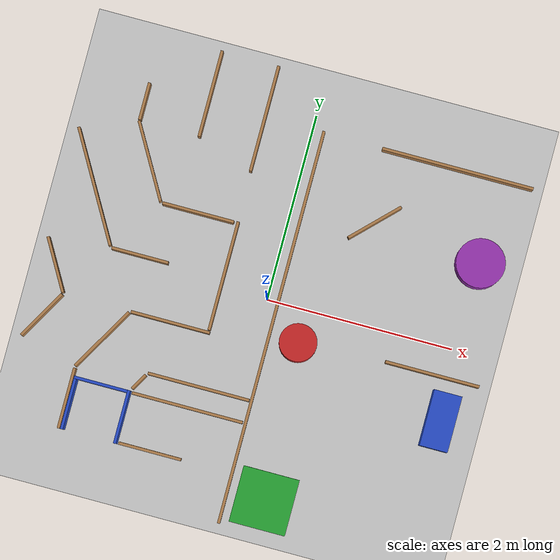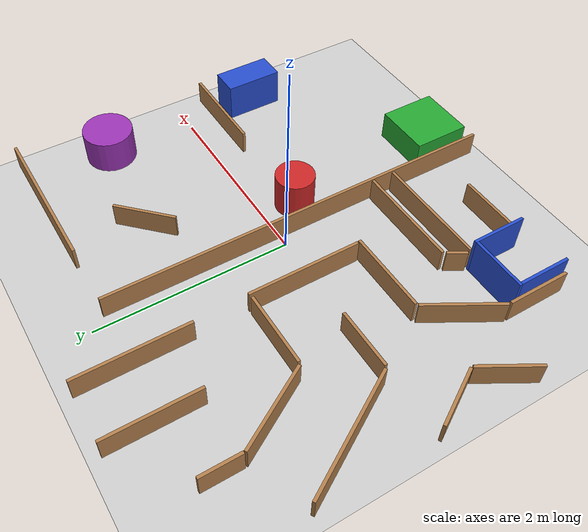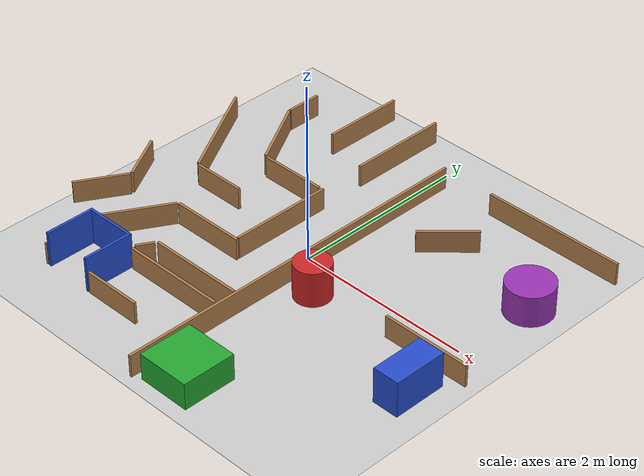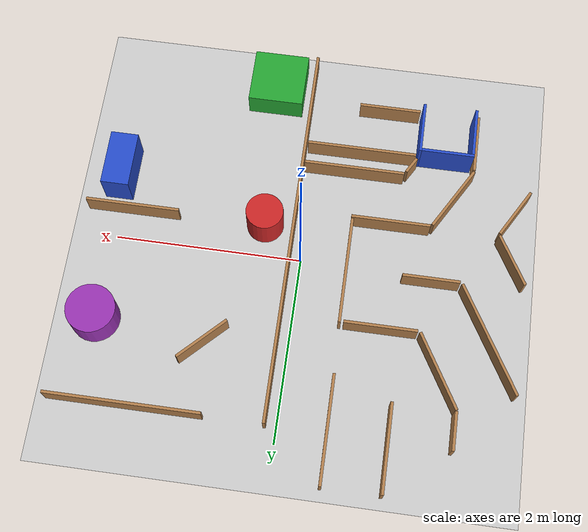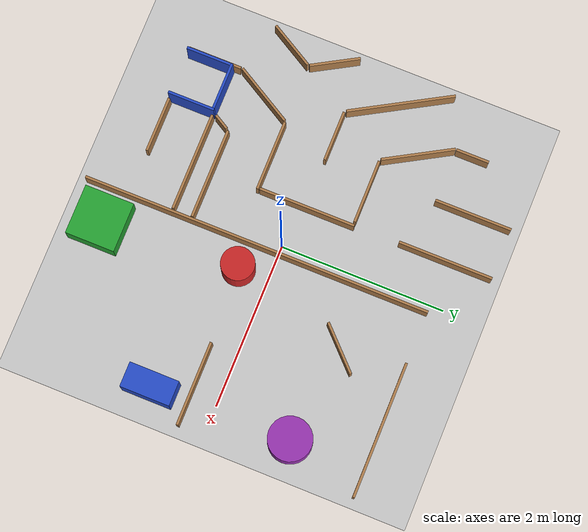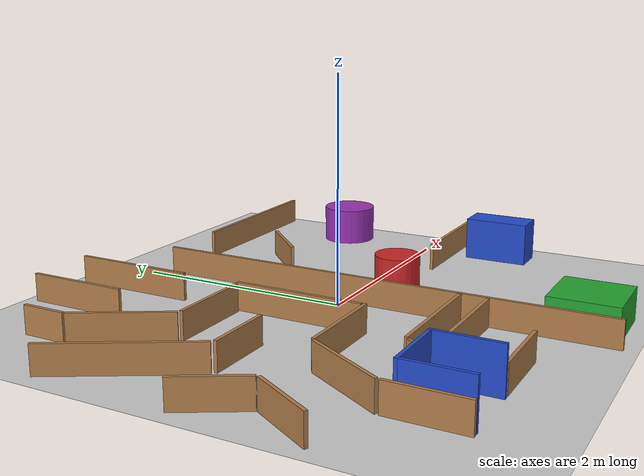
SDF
<sdf version="1.6">
 <world name="default">
  <light name="sun" type="directional">
   <pose>0 0 10 0 -0 0</pose>
   <diffuse>0.8 0.8 0.8 1</diffuse>
   <specular>0.2 0.2 0.2 1</specular>
   <attenuation>
    <range>1000</range>
    <constant>0.9</constant>
    <linear>0.01</linear>
    <quadratic>0.001</quadratic>
   </attenuation>
   <direction>-0.5 0.1 -0.9</direction>
  </light>
  <gravity>0 0 -9.8</gravity>
  <magnetic_field>6e-06 2.3e-05 -4.2e-05</magnetic_field>
  <atmosphere type="adiabatic"/>
  <physics name="default_physics" default="0" type="ode">
   <max_step_size>0.001</max_step_size>
   <real_time_factor>1</real_time_factor>
   <real_time_update_rate>1000</real_time_update_rate>
  </physics>
  <scene><ambient>0.4 0.4 0.4 1</ambient><background>0.7 0.7 0.7 1</background><shadows>1</shadows></scene>
  <spherical_coordinates>
   <surface_model>EARTH_WGS84</surface_model>
   <latitude_deg>0</latitude_deg>
   <longitude_deg>0</longitude_deg>
   <elevation>0</elevation>
   <heading_deg>0</heading_deg>
  </spherical_coordinates>
  <include><uri>model://final_challenge_example</uri></include>
 </world>
</sdf>

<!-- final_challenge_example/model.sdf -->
<sdf version="1.4">
<model name="beaconing">
  <static>true</static>
    <link name="floor">
      <collision name="collision">
        <geometry>
          <plane>
            <normal>0 0 1</normal>
            <size>5.0 5.0</size>
          </plane>
        </geometry>
        <surface>
          <friction>
            <ode>
              <mu>100</mu>
              <mu2>50</mu2>
            </ode>
          </friction>
        </surface>
      </collision>
      <visual name="visual">
        <cast_shadows>false</cast_shadows>
        <geometry>
          <plane>
            <normal>0 0 1</normal>
            <size>5.0 5.0</size>
          </plane>
        </geometry>
        <material>
          <script>
            <uri>model://final_challenge_example/materials/scripts</uri>
            <uri>model://final_challenge_example/materials/textures</uri>
            <name>FinalChallengeExampleFloor/Image</name>
          </script>
        </material>
      </visual>
    </link>
    <link name='start_zone'>
      <pose frame=''>-1.41861 -1.58157 0.2 0 0 -1.571</pose>
      <collision name='Right_Wall_Collision'>
        <geometry>
          <box>
            <size>0.57 0.03 0.4</size>
          </box>
        </geometry>
        <pose frame=''>0 0.2850 0 0 0 0</pose>
      </collision>
      <visual name='Right_Wall_Visual'>
        <pose frame=''>0 0.2850 0 0 0 0</pose>
        <geometry>
          <box>
            <size>0.57 0.03 0.4</size>
          </box>
        </geometry>
        <material>
          <script>
            <uri>file://media/materials/scripts/gazebo.material</uri>
            <name>Gazebo/Blue</name>
          </script>
        </material>
      </visual>
      <collision name='Back_Wall_Collision'>
        <geometry>
          <box>
            <size>0.57 0.03 0.4</size>
          </box>
        </geometry>
        <pose frame=''>-0.27 -0.015 0 0 0 1.571</pose>
      </collision>
      <visual name='Back_Wall_Visual'>
        <pose frame=''>-0.27 -0.015 0 0 0 1.571</pose>
        <geometry>
          <box>
            <size>0.57 0.03 0.4</size>
          </box>
        </geometry>
        <material>
          <script>
            <uri>file://media/materials/scripts/gazebo.material</uri>
            <name>Gazebo/Blue</name>
          </script>
        </material>
      </visual>
      <collision name='Left_Wall_Collision'>
        <geometry>
          <box>
            <size>0.54 0.03 0.4</size>
          </box>
        </geometry>
        <pose frame=''>0.015 -0.285 0 0 0 0</pose>
      </collision>
      <visual name='Left_Wall_Visual'>
        <pose frame=''>0.015 -0.285 0 0 0 0</pose>
        <geometry>
          <box>
            <size>0.54 0.03 0.4</size>
          </box>
        </geometry>
        <material>
          <script>
            <uri>file://media/materials/scripts/gazebo.material</uri>
            <name>Gazebo/Blue</name>
          </script>
        </material>
      </visual>
    </link>
    <link name='wall_00'>
      <pose frame=''>-0.76361 -1.85157 0.125 0 0 0</pose>
      <collision name='coll'>
        <geometry>
          <box>
            <size>0.67 0.03 0.25</size>
          </box>
        </geometry>
      </collision>
      <visual name='vis'>
        <geometry>
          <box>
            <size>0.67 0.03 0.25</size>
          </box>
        </geometry>
        <material>
          <script>
            <uri>file://media/materials/scripts/gazebo.material</uri>
            <name>Gazebo/Wood</name>
          </script>
        </material>
      </visual>
    </link>
    <link name='wall_01'>
      <pose frame=''>-1.74664 -1.54157 0.125 0 0 1.571</pose>
      <collision name='coll'>
        <geometry>
          <box>
            <size>0.65 0.03 0.25</size>
          </box>
        </geometry>
      </collision>
      <visual name='vis'>
        <geometry>
          <box>
            <size>0.65 0.03 0.25</size>
          </box>
        </geometry>
        <material>
          <script>
            <uri>file://media/materials/scripts/gazebo.material</uri>
            <name>Gazebo/Wood</name>
          </script>
        </material>
      </visual>
    </link>
    <link name='wall_02'>
      <pose frame=''>-0.50602 -1.31157 0.125 0 0 0</pose>
      <collision name='coll'>
        <geometry>
          <box>
            <size>1.19 0.03 0.25</size>
          </box>
        </geometry>
      </collision>
      <visual name='vis'>
        <geometry>
          <box>
            <size>1.19 0.03 0.25</size>
          </box>
        </geometry>
        <material>
          <script>
            <uri>file://media/materials/scripts/gazebo.material</uri>
            <name>Gazebo/Wood</name>
          </script>
        </material>
      </visual>
    </link>
    <link name='wall_03'>
      <pose frame=''>-1.06401 -1.18247 0.125 0 0 1.048</pose>
      <collision name='coll'>
        <geometry>
          <box>
            <size>0.20 0.03 0.25</size>
          </box>
        </geometry>
      </collision>
      <visual name='vis'>
        <geometry>
          <box>
            <size>0.20 0.03 0.25</size>
          </box>
        </geometry>
        <material>
          <script>
            <uri>file://media/materials/scripts/gazebo.material</uri>
            <name>Gazebo/Wood</name>
          </script>
        </material>
      </visual>
    </link>
    <link name='wall_04'>
      <pose frame=''>-0.44998 -1.07157 0.125 0 0 0</pose>
      <collision name='coll'>
        <geometry>
          <box>
            <size>1.09 0.03 0.25</size>
          </box>
        </geometry>
      </collision>
      <visual name='vis'>
        <geometry>
          <box>
            <size>1.09 0.03 0.25</size>
          </box>
        </geometry>
        <material>
          <script>
            <uri>file://media/materials/scripts/gazebo.material</uri>
            <name>Gazebo/Wood</name>
          </script>
        </material>
      </visual>
    </link>
    <link name='wall_05'>
      <pose frame=''>-1.55115 -0.85274 0.125 0 0 1.048</pose>
      <collision name='coll'>
        <geometry>
          <box>
            <size>0.79 0.03 0.25</size>
          </box>
        </geometry>
      </collision>
      <visual name='vis'>
        <geometry>
          <box>
            <size>0.79 0.03 0.25</size>
          </box>
        </geometry>
        <material>
          <script>
            <uri>file://media/materials/scripts/gazebo.material</uri>
            <name>Gazebo/Wood</name>
          </script>
        </material>
      </visual>
    </link>
    <link name='wall_06'>
      <pose frame=''>-0.90955 -0.49871 0.125 0 0 0</pose>
      <collision name='coll'>
        <geometry>
          <box>
            <size>0.85 0.03 0.25</size>
          </box>
        </geometry>
      </collision>
      <visual name='vis'>
        <geometry>
          <box>
            <size>0.85 0.03 0.25</size>
          </box>
        </geometry>
        <material>
          <script>
            <uri>file://media/materials/scripts/gazebo.material</uri>
            <name>Gazebo/Wood</name>
          </script>
        </material>
      </visual>
    </link>
    <link name='wall_07'>
      <pose frame=''>-0.49955 0.11268 0.125 0 0 1.571</pose>
      <collision name='coll'>
        <geometry>
          <box>
            <size>1.17 0.03 0.25</size>
          </box>
        </geometry>
      </collision>
      <visual name='vis'>
        <geometry>
          <box>
            <size>1.17 0.03 0.25</size>
          </box>
        </geometry>
        <material>
          <script>
            <uri>file://media/materials/scripts/gazebo.material</uri>
            <name>Gazebo/Wood</name>
          </script>
        </material>
      </visual>
    </link>
    <link name='wall_08'>
      <pose frame=''>-2.22369 -0.76938 0.125 0 0 1.048</pose>
      <collision name='coll'>
        <geometry>
          <box>
            <size>0.60 0.03 0.25</size>
          </box>
        </geometry>
      </collision>
      <visual name='vis'>
        <geometry>
          <box>
            <size>0.60 0.03 0.25</size>
          </box>
        </geometry>
        <material>
          <script>
            <uri>file://media/materials/scripts/gazebo.material</uri>
            <name>Gazebo/Wood</name>
          </script>
        </material>
      </visual>
    </link>
    <link name='wall_09'>
      <pose frame=''>-2.22368 -0.22821 0.125 0 0 -1.048</pose>
      <collision name='coll'>
        <geometry>
          <box>
            <size>0.60 0.03 0.25</size>
          </box>
        </geometry>
      </collision>
      <visual name='vis'>
        <geometry>
          <box>
            <size>0.60 0.03 0.25</size>
          </box>
        </geometry>
        <material>
          <script>
            <uri>file://media/materials/scripts/gazebo.material</uri>
            <name>Gazebo/Wood</name>
          </script>
        </material>
      </visual>
    </link>
    <link name='wall_0A'>
      <pose frame=''>-1.39752 0.09333 0.125 0 0 0</pose>
      <collision name='coll'>
        <geometry>
          <box>
            <size>0.61 0.03 0.25</size>
          </box>
        </geometry>
      </collision>
      <visual name='vis'>
        <geometry>
          <box>
            <size>0.61 0.03 0.25</size>
          </box>
        </geometry>
        <material>
          <script>
            <uri>file://media/materials/scripts/gazebo.material</uri>
            <name>Gazebo/Wood</name>
          </script>
        </material>
      </visual>
    </link>
    <link name='wall_0B'>
      <pose frame=''>-2.04570 0.66665 0.125 0 0 -1.048</pose>
      <collision name='coll'>
        <geometry>
          <box>
            <size>1.28 0.03 0.25</size>
          </box>
        </geometry>
      </collision>
      <visual name='vis'>
        <geometry>
          <box>
            <size>1.28 0.03 0.25</size>
          </box>
        </geometry>
        <material>
          <script>
            <uri>file://media/materials/scripts/gazebo.material</uri>
            <name>Gazebo/Wood</name>
          </script>
        </material>
      </visual>
    </link>
    <link name='wall_0C'>
      <pose frame=''>-0.92752 0.68268 0.125 0 0 0</pose>
      <collision name='coll'>
        <geometry>
          <box>
            <size>0.77 0.03 0.25</size>
          </box>
        </geometry>
      </collision>
      <visual name='vis'>
        <geometry>
          <box>
            <size>0.77 0.03 0.25</size>
          </box>
        </geometry>
        <material>
          <script>
            <uri>file://media/materials/scripts/gazebo.material</uri>
            <name>Gazebo/Wood</name>
          </script>
        </material>
      </visual>
    </link>
    <link name='wall_0D'>
      <pose frame=''>-1.55693 1.07098 0.125 0 0 -1.048</pose>
      <collision name='coll'>
        <geometry>
          <box>
            <size>0.87 0.03 0.25</size>
          </box>
        </geometry>
      </collision>
      <visual name='vis'>
        <geometry>
          <box>
            <size>0.87 0.03 0.25</size>
          </box>
        </geometry>
        <material>
          <script>
            <uri>file://media/materials/scripts/gazebo.material</uri>
            <name>Gazebo/Wood</name>
          </script>
        </material>
      </visual>
    </link>
    <link name='wall_0E'>
      <pose frame=''>-1.77242 1.66053 0.125 0 0 1.571</pose>
      <collision name='coll'>
        <geometry>
          <box>
            <size>0.40 0.03 0.25</size>
          </box>
        </geometry>
      </collision>
      <visual name='vis'>
        <geometry>
          <box>
            <size>0.40 0.03 0.25</size>
          </box>
        </geometry>
        <material>
          <script>
            <uri>file://media/materials/scripts/gazebo.material</uri>
            <name>Gazebo/Wood</name>
          </script>
        </material>
      </visual>
    </link>
    <link name='wall_0F'>
      <pose frame=''>-1.12669 1.91633 0.125 0 0 1.571</pose>
      <collision name='coll'>
        <geometry>
          <box>
            <size>0.93 0.03 0.25</size>
          </box>
        </geometry>
      </collision>
      <visual name='vis'>
        <geometry>
          <box>
            <size>0.93 0.03 0.25</size>
          </box>
        </geometry>
        <material>
          <script>
            <uri>file://media/materials/scripts/gazebo.material</uri>
            <name>Gazebo/Wood</name>
          </script>
        </material>
      </visual>
    </link>
    <link name='wall_10'>
      <pose frame=''>-0.51535 1.81133 0.125 0 0 1.571</pose>
      <collision name='coll'>
        <geometry>
          <box>
            <size>1.14 0.03 0.25</size>
          </box>
        </geometry>
      </collision>
      <visual name='vis'>
        <geometry>
          <box>
            <size>1.14 0.03 0.25</size>
          </box>
        </geometry>
        <material>
          <script>
            <uri>file://media/materials/scripts/gazebo.material</uri>
            <name>Gazebo/Wood</name>
          </script>
        </material>
      </visual>
    </link>
    <link name='wall_11'>
      <pose frame=''>0.11942 -0.27157 0.125 0 0 1.571</pose>
      <collision name='coll'>
        <geometry>
          <box>
            <size>4.23 0.03 0.25</size>
          </box>
        </geometry>
      </collision>
      <visual name='vis'>
        <geometry>
          <box>
            <size>4.23 0.03 0.25</size>
          </box>
        </geometry>
        <material>
          <script>
            <uri>file://media/materials/scripts/gazebo.material</uri>
            <name>Gazebo/Wood</name>
          </script>
        </material>
      </visual>
    </link>
    <link name='wall_12'>
      <pose frame=''>1.56865 1.82843 0.125 0 0 0</pose>
      <collision name='coll'>
        <geometry>
          <box>
            <size>1.63 0.03 0.25</size>
          </box>
        </geometry>
      </collision>
      <visual name='vis'>
        <geometry>
          <box>
            <size>1.63 0.03 0.25</size>
          </box>
        </geometry>
        <material>
          <script>
            <uri>file://media/materials/scripts/gazebo.material</uri>
            <name>Gazebo/Wood</name>
          </script>
        </material>
      </visual>
    </link>
    <link name='wall_13'>
      <pose frame=''>0.87757 1.06095 0.125 0 0 0.786</pose>
      <collision name='coll'>
        <geometry>
          <box>
            <size>0.64 0.03 0.25</size>
          </box>
        </geometry>
      </collision>
      <visual name='vis'>
        <geometry>
          <box>
            <size>0.64 0.03 0.25</size>
          </box>
        </geometry>
        <material>
          <script>
            <uri>file://media/materials/scripts/gazebo.material</uri>
            <name>Gazebo/Wood</name>
          </script>
        </material>
      </visual>
    </link>
    <link name='wall_14'>
      <pose frame=''>1.86622 -0.31301 0.125 0 0 0</pose>
      <collision name='coll'>
        <geometry>
          <box>
            <size>1.01 0.03 0.25</size>
          </box>
        </geometry>
      </collision>
      <visual name='vis'>
        <geometry>
          <box>
            <size>1.01 0.03 0.25</size>
          </box>
        </geometry>
        <material>
          <script>
            <uri>file://media/materials/scripts/gazebo.material</uri>
            <name>Gazebo/Wood</name>
          </script>
        </material>
      </visual>
    </link>
    <link name='cyl_a'>
      <pose frame=''>0.43133 -0.36288 0.2 0 0 0</pose>
      <collision name='coll'>
        <geometry>
          <cylinder>
            <radius>0.2</radius>
            <length>0.4</length>
          </cylinder>
        </geometry>
        <max_contacts>10</max_contacts>
        <surface>
          <bounce/>
          <friction>
            <ode/>
          </friction>
          <contact>
            <ode/>
          </contact>
        </surface>
      </collision>
      <visual name='vis'>
        <geometry>
          <cylinder>
            <radius>0.2</radius>
            <length>0.4</length>
          </cylinder>
        </geometry>
        <material>
          <script>
            <uri>file://media/materials/scripts/gazebo.material</uri>
            <name>Gazebo/Red</name>
          </script>
        </material>
      </visual>
    </link>
    <link name='cyl_b'>
      <pose frame=''>2.04977 0.92898 0.175 0 0 0</pose>
      <collision name='coll'>
        <geometry>
          <cylinder>
            <radius>0.26</radius>
            <length>0.35</length>
          </cylinder>
        </geometry>
        <max_contacts>10</max_contacts>
        <surface>
          <bounce/>
          <friction>
            <ode/>
          </friction>
          <contact>
            <ode/>
          </contact>
        </surface>
      </collision>
      <visual name='vis'>
        <geometry>
          <cylinder>
            <radius>0.26</radius>
            <length>0.35</length>
          </cylinder>
        </geometry>
        <material>
          <script>
            <uri>file://media/materials/scripts/gazebo.material</uri>
            <name>Gazebo/Purple</name>
          </script>
        </material>
      </visual>
    </link>
    <link name='box_a'>
      <pose frame=''>2.07141 -0.76400 0.2 0 0 0</pose>
      <collision name='coll'>
        <geometry>
          <box>
            <size>0.3 0.6 0.4</size>
          </box>
        </geometry>
      </collision>
      <visual name='vis'>
        <geometry>
          <box>
            <size>0.3 0.6 0.4</size>
          </box>
        </geometry>
        <material>
          <script>
            <uri>file://media/materials/scripts/gazebo.material</uri>
            <name>Gazebo/Blue</name>
          </script>
        </material>
      </visual>
    </link>
    <link name='box_b'>
      <pose frame=''>0.51816 -2.03789 0.15 0 0 0</pose>
      <collision name='coll'>
        <geometry>
          <box>
            <size>0.6 0.6 0.3</size>
          </box>
        </geometry>
      </collision>
      <visual name='vis'>
        <geometry>
          <box>
            <size>0.6 0.6 0.3</size>
          </box>
        </geometry>
        <material>
          <script>
            <uri>file://media/materials/scripts/gazebo.material</uri>
            <name>Gazebo/Green</name>
          </script>
        </material>
      </visual>
    </link>

  </model>
</sdf>
